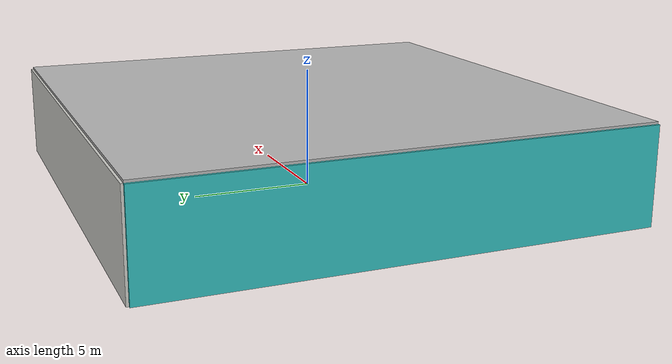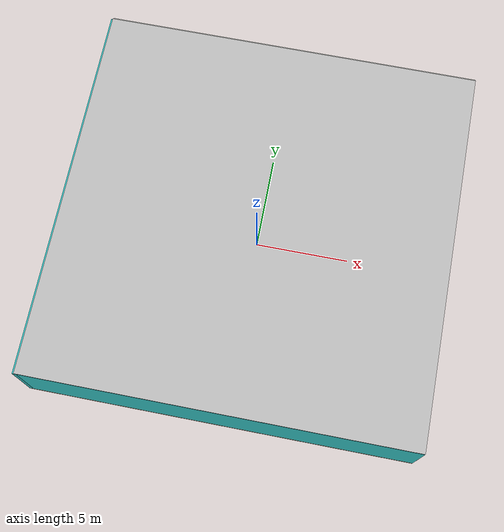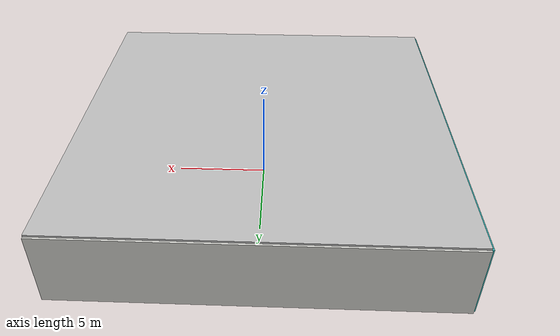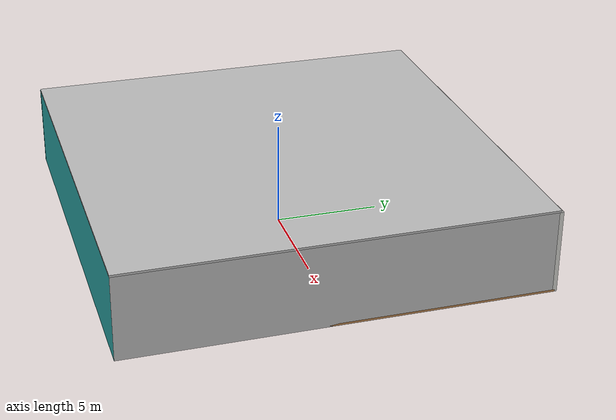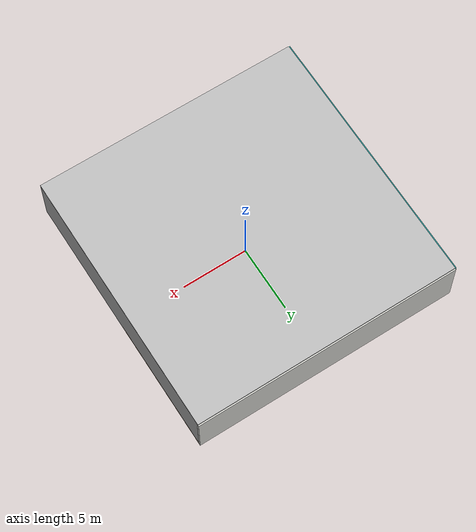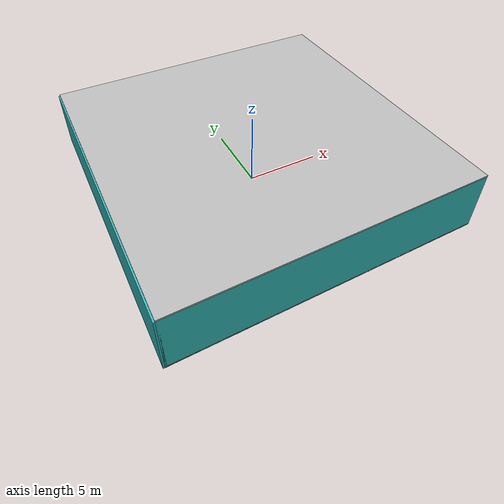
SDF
<sdf version="1.4">
 <world name="default">
  <physics type="ode">
   <max_step_size>0.001</max_step_size>
   <real_time_factor>1</real_time_factor>
   <real_time_update_rate>1000</real_time_update_rate>
   <gravity>0 0 -9.8</gravity>
  </physics>
  <scene><ambient>0.4 0.4 0.4 1</ambient><background>0.7 0.7 0.7 1</background><shadows>1</shadows></scene>
  <model name="Surrounding">
   <static>1</static>
   <link name="Ceiling">
    <collision name="Ceiling_Collision"><geometry><box><size>20 20 0.1</size></box></geometry></collision>
    <visual name="Ceiling_Visual">
     <geometry><box><size>20 20 0.1</size></box></geometry>
     <material>
      <script><uri>file://media/materials/scripts/gazebo.material</uri><name>Gazebo/CloudySky</name></script>
     </material>
    </visual>
    <pose>0 0 4.05 0 0 0</pose>
   </link>
   <link name="Wall_South">
    <collision name="Wall_South_Collision">
     <geometry><box><size>20 0 4</size></box></geometry>
     <pose>0 0 2 0 -0 0</pose>
    </collision>
    <visual name="Wall_South_Visual">
     <pose>0 0 2 0 -0 0</pose>
     <geometry><box><size>20 0 4</size></box></geometry>
     <material>
      <script><uri>file://media/materials/scripts/gazebo.material</uri><name>Gazebo/TurquoiseGlow</name></script>
     </material>
    </visual>
    <velocity_decay><linear>0</linear><angular>0</angular></velocity_decay>
    <pose>0 -10 0 0 -0 0</pose>
   </link>
   <link name="Wall_East">
    <collision name="Wall_21_Collision">
     <geometry><box><size>20 0 4</size></box></geometry>
     <pose>0 0 2 0 -0 0</pose>
    </collision>
    <visual name="Wall_21_Visual">
     <pose>0 0 2 0 -0 0</pose>
     <geometry><box><size>20 0 4</size></box></geometry>
     <material>
      <script><uri>file://media/materials/scripts/gazebo.material</uri><name>Gazebo/Pioneer2Body</name></script>
     </material>
    </visual>
    <velocity_decay><linear>0</linear><angular>0</angular></velocity_decay>
    <pose>10 0 0 0 -0 1.5708</pose>
   </link>
   <link name="Wall_North">
    <collision name="Wall_22_Collision">
     <geometry><box><size>20 0.2 4</size></box></geometry>
     <pose>0 0 2 0 -0 0</pose>
    </collision>
    <visual name="Wall_22_Visual">
     <pose>0 0 2 0 -0 0</pose>
     <geometry><box><size>20 0.2 4</size></box></geometry>
     <material>
      <script><uri>file://media/materials/scripts/gazebo.material</uri><name>Gazebo/CeilingTiled</name></script>
     </material>
    </visual>
    <velocity_decay><linear>0</linear><angular>0</angular></velocity_decay>
    <pose>0 10 0 0 -0 0</pose>
   </link>
   <link name="Wall_West">
    <collision name="Wall_23_Collision">
     <geometry><box><size>20 0.2 4</size></box></geometry>
     <pose>0 0 2 0 -0 0</pose>
    </collision>
    <visual name="Wall_23_Visual">
     <pose>0 0 2 0 -0 0</pose>
     <geometry><box><size>20 0.2 4</size></box></geometry>
     <material>
      <script><uri>file://media/materials/scripts/gazebo.material</uri><name>Gazebo/Turquoise</name></script>
     </material>
    </visual>
    <velocity_decay><linear>0</linear><angular>0</angular></velocity_decay>
    <pose>-10 0 0 0 0 -1.5708</pose>
   </link>
   <link name="Ground_link">
    <collision name="collision">
     <pose>0 0 .05 0 -0 0</pose>
     <geometry><box><size>20 20 0.1</size></box></geometry>
    </collision>
    <visual name="visual">
     <pose>0 0 .05 0 -0 0</pose>
     <geometry><box><size>20 20 0.1</size></box></geometry>
     <material>
      <script><uri>file://media/materials/scripts/gazebo.material</uri><name>Gazebo/WoodFloor</name></script>
     </material>
    </visual>
   </link>
   <static>1</static>
  </model>
  <spherical_coordinates>
   <surface_model>EARTH_WGS84</surface_model>
   <latitude_deg>0</latitude_deg>
   <longitude_deg>0</longitude_deg>
   <elevation>0</elevation>
   <heading_deg>0</heading_deg>
  </spherical_coordinates>
  <light name="lightball_0" type="diffuse">
   <diffuse>0.8 0.8 0.8 1</diffuse>
   <specular>0.2 0.2 0.2 1</specular>
   <attenuation>
    <range>100</range>
    <constant>0.7</constant>
    <linear>0.01</linear>
    <quadratic>0.001</quadratic>
   </attenuation>
   <direction>-0.5 0.1 -0.9</direction>
   <pose>9.29035079524 4.75761894782 2.35818546623 0 0 0</pose>
  </light>
  <light name="lightball_1" type="diffuse">
   <diffuse>0.8 0.8 0.8 1</diffuse>
   <specular>0.2 0.2 0.2 1</specular>
   <attenuation>
    <range>100</range>
    <constant>0.7</constant>
    <linear>0.01</linear>
    <quadratic>0.001</quadratic>
   </attenuation>
   <direction>-0.5 0.1 -0.9</direction>
   <pose>1.71779865751 -9.33204719317 1.56249241037 0 0 0</pose>
  </light>
  <light name="lightball_2" type="diffuse">
   <diffuse>0.8 0.8 0.8 1</diffuse>
   <specular>0.2 0.2 0.2 1</specular>
   <attenuation>
    <range>100</range>
    <constant>0.7</constant>
    <linear>0.01</linear>
    <quadratic>0.001</quadratic>
   </attenuation>
   <direction>-0.5 0.1 -0.9</direction>
   <pose>1.23417059934 -5.71091563426 0.611015746646 0 0 0</pose>
  </light>
  <light name="lightball_3" type="diffuse">
   <diffuse>0.8 0.8 0.8 1</diffuse>
   <specular>0.2 0.2 0.2 1</specular>
   <attenuation>
    <range>100</range>
    <constant>0.7</constant>
    <linear>0.01</linear>
    <quadratic>0.001</quadratic>
   </attenuation>
   <direction>-0.5 0.1 -0.9</direction>
   <pose>-2.92446435527 2.34162180213 1.71668272055 0 0 0</pose>
  </light>
  <light name="lightball_4" type="diffuse">
   <diffuse>0.8 0.8 0.8 1</diffuse>
   <specular>0.2 0.2 0.2 1</specular>
   <attenuation>
    <range>100</range>
    <constant>0.7</constant>
    <linear>0.01</linear>
    <quadratic>0.001</quadratic>
   </attenuation>
   <direction>-0.5 0.1 -0.9</direction>
   <pose>-0.129717492725 1.59234899475 1.49350980543 0 0 0</pose>
  </light>
  <light name="lightball_5" type="diffuse">
   <diffuse>0.8 0.8 0.8 1</diffuse>
   <specular>0.2 0.2 0.2 1</specular>
   <attenuation>
    <range>100</range>
    <constant>0.7</constant>
    <linear>0.01</linear>
    <quadratic>0.001</quadratic>
   </attenuation>
   <direction>-0.5 0.1 -0.9</direction>
   <pose>5.2890224895 9.20680108844 1.66689829848 0 0 0</pose>
  </light>
  <light name="lightball_6" type="diffuse">
   <diffuse>0.8 0.8 0.8 1</diffuse>
   <specular>0.2 0.2 0.2 1</specular>
   <attenuation>
    <range>100</range>
    <constant>0.7</constant>
    <linear>0.01</linear>
    <quadratic>0.001</quadratic>
   </attenuation>
   <direction>-0.5 0.1 -0.9</direction>
   <pose>-1.03070616453 -0.513195319296 1.2152717148 0 0 0</pose>
  </light>
  <light name="lightball_7" type="diffuse">
   <diffuse>0.8 0.8 0.8 1</diffuse>
   <specular>0.2 0.2 0.2 1</specular>
   <attenuation>
    <range>100</range>
    <constant>0.7</constant>
    <linear>0.01</linear>
    <quadratic>0.001</quadratic>
   </attenuation>
   <direction>-0.5 0.1 -0.9</direction>
   <pose>2.62097448064 -0.890594261193 1.47183161809 0 0 0</pose>
  </light>
  <light name="lightball_8" type="diffuse">
   <diffuse>0.8 0.8 0.8 1</diffuse>
   <specular>0.2 0.2 0.2 1</specular>
   <attenuation>
    <range>100</range>
    <constant>0.7</constant>
    <linear>0.01</linear>
    <quadratic>0.001</quadratic>
   </attenuation>
   <direction>-0.5 0.1 -0.9</direction>
   <pose>2.40993757938 -8.93809850283 1.76126609218 0 0 0</pose>
  </light>
  <light name="lightball_9" type="diffuse">
   <diffuse>0.8 0.8 0.8 1</diffuse>
   <specular>0.2 0.2 0.2 1</specular>
   <attenuation>
    <range>100</range>
    <constant>0.7</constant>
    <linear>0.01</linear>
    <quadratic>0.001</quadratic>
   </attenuation>
   <direction>-0.5 0.1 -0.9</direction>
   <pose>5.14288679736 -7.19102738255 1.16689244999 0 0 0</pose>
  </light>
  <light name="lightball_10" type="diffuse">
   <diffuse>0.8 0.8 0.8 1</diffuse>
   <specular>0.2 0.2 0.2 1</specular>
   <attenuation>
    <range>100</range>
    <constant>0.7</constant>
    <linear>0.01</linear>
    <quadratic>0.001</quadratic>
   </attenuation>
   <direction>-0.5 0.1 -0.9</direction>
   <pose>-3.15529912593 9.81952829901 1.2390053673 0 0 0</pose>
  </light>
  <light name="lightball_11" type="diffuse">
   <diffuse>0.8 0.8 0.8 1</diffuse>
   <specular>0.2 0.2 0.2 1</specular>
   <attenuation>
    <range>100</range>
    <constant>0.7</constant>
    <linear>0.01</linear>
    <quadratic>0.001</quadratic>
   </attenuation>
   <direction>-0.5 0.1 -0.9</direction>
   <pose>-8.68305770299 -1.02263121799 0.564917663853 0 0 0</pose>
  </light>
  <light name="lightball_12" type="diffuse">
   <diffuse>0.8 0.8 0.8 1</diffuse>
   <specular>0.2 0.2 0.2 1</specular>
   <attenuation>
    <range>100</range>
    <constant>0.7</constant>
    <linear>0.01</linear>
    <quadratic>0.001</quadratic>
   </attenuation>
   <direction>-0.5 0.1 -0.9</direction>
   <pose>-2.31821401186 9.49463031717 2.55458450391 0 0 0</pose>
  </light>
  <include><uri>model://table</uri><pose>-7.69199624593 4.43343712111 0 0 0 2.49700390927</pose></include>
  <include>
   <uri>model://construction_cone</uri>
   <pose>-4.51771871817 -4.85710916964 0 0 0 1.22449780586</pose>
  </include>
  <include><uri>model://cabinet</uri><pose>-4.00556734686 -2.10810117402 0 0 0 0.239542033343</pose></include>
  <include>
   <uri>model://textured_shapes</uri>
   <pose>2.03090160595 4.39426080363 0 0 0 1.05009643905</pose>
  </include>
  <include><uri>model://cabinet</uri><pose>8.22581417581 4.28830956933 0 0 0 0.0379731721609</pose></include>
 </world>
</sdf>

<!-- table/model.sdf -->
<sdf version="1.5">
  <model name="table">
    <static>true</static>
    <link name="link">
      <collision name="surface">
        <pose>0 0 1.0 0 0 0</pose>
        <geometry>
          <box>
            <size>1.5 0.8 0.03</size>
          </box>
        </geometry>
        <surface>
          <friction>
            <ode>
              <mu>0.6</mu>
              <mu2>0.6</mu2>
            </ode>
          </friction>
        </surface>
      </collision>
      <visual name="visual1">
        <pose>0 0 1.0 0 0 0</pose>
        <geometry>
          <box>
            <size>1.5 0.8 0.03</size>
          </box>
        </geometry>
        <material>
          <script>
            <uri>model://media/materials/scripts/gazebo.material</uri>
            <name>Gazebo/Wood</name>
          </script>
        </material>
      </visual>
      <collision name="front_left_leg">
        <pose>0.68 0.38 0.5 0 0 0</pose>
        <geometry>
          <cylinder>
            <radius>0.02</radius>
            <length>1.0</length>
          </cylinder>
        </geometry>
      </collision>
      <visual name="front_left_leg">
        <pose>0.68 0.38 0.5 0 0 0</pose>
        <geometry>
          <cylinder>
            <radius>0.02</radius>
            <length>1.0</length>
          </cylinder>
        </geometry>
        <material>
          <script>
            <uri>model://media/materials/scripts/gazebo.material</uri>
            <name>Gazebo/Grey</name>
          </script>
        </material>
      </visual>
      <collision name="front_right_leg">
        <pose>0.68 -0.38 0.5 0 0 0</pose>
        <geometry>
          <cylinder>
            <radius>0.02</radius>
            <length>1.0</length>
          </cylinder>
        </geometry>
      </collision>
      <visual name="front_right_leg">
        <pose>0.68 -0.38 0.5 0 0 0</pose>
        <geometry>
          <cylinder>
            <radius>0.02</radius>
            <length>1.0</length>
          </cylinder>
        </geometry>
        <material>
          <script>
            <uri>model://media/materials/scripts/gazebo.material</uri>
            <name>Gazebo/Grey</name>
          </script>
        </material>
      </visual>
      <collision name="back_right_leg">
        <pose>-0.68 -0.38 0.5 0 0 0</pose>
        <geometry>
          <cylinder>
            <radius>0.02</radius>
            <length>1.0</length>
          </cylinder>
        </geometry>
      </collision>
      <visual name="back_right_leg">
        <pose>-0.68 -0.38 0.5 0 0 0</pose>
        <geometry>
          <cylinder>
            <radius>0.02</radius>
            <length>1.0</length>
          </cylinder>
        </geometry>
        <material>
          <script>
            <uri>model://media/materials/scripts/gazebo.material</uri>
            <name>Gazebo/Grey</name>
          </script>
        </material>
      </visual>
      <collision name="back_left_leg">
        <pose>-0.68 0.38 0.5 0 0 0</pose>
        <geometry>
          <cylinder>
            <radius>0.02</radius>
            <length>1.0</length>
          </cylinder>
        </geometry>
      </collision>
      <visual name="back_left_leg">
        <pose>-0.68 0.38 0.5 0 0 0</pose>
        <geometry>
          <cylinder>
            <radius>0.02</radius>
            <length>1.0</length>
          </cylinder>
        </geometry>
        <material>
          <script>
            <uri>model://media/materials/scripts/gazebo.material</uri>
            <name>Gazebo/Grey</name>
          </script>
        </material>
      </visual>
    </link>
  </model>
</sdf>

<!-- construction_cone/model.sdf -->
<sdf version="1.5">
  <model name="Construction Cone">
    <link name="link">
      <collision name="collision">
        <geometry>
          <mesh>
            <scale>10 10 10</scale>
            <uri>file://isr-testbed/construction_cone/meshes/construction_cone.dae</uri>
          </mesh>
        </geometry>
      </collision>
      <visual name="visual">
        <geometry>
          <mesh>
            <scale>10 10 10</scale>
            <uri>file://isr-testbed/construction_cone/meshes/construction_cone.dae</uri>
          </mesh>
        </geometry>
      </visual>
    </link>
  </model>
</sdf>

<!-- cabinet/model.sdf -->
<sdf version="1.5">
  <model name="cabinet">
    <static>true</static>
    <link name="cabinet_bottom_plate">
      <inertial>
        <pose>0 0 -1 0 0 0</pose>
        <inertia>
          <ixx>2.050000</ixx>
          <ixy>0</ixy>
          <ixz>0</ixz>
          <iyy>2.050000</iyy>
          <iyz>0</iyz>
          <izz>2.050000</izz>
        </inertia>
        <mass>25.000000</mass>
      </inertial>
      <collision name="cabinet_bottom_plate_geom">
        <pose>0 0 0.010000 0 0 0</pose>
        <geometry>
          <box>
            <size>0.450000 0.450000 0.020000</size>
          </box>
        </geometry>
      </collision>
      <visual name="cabinet_bottom_plate_geom_visual">
        <pose>0 0 0.010000 0 0 0</pose>
        <geometry>
          <box>
            <size>0.450000 0.450000 0.020000</size>
          </box>
        </geometry>
        <material>
          <script>
            <uri>model://media/materials/scripts/gazebo.material</uri>
            <name>Gazebo/Wood</name>
          </script>
        </material>
      </visual>
      <collision name="cabinet_bottom_plate_geom_cabinet_back_plate">
        <pose>0.235000 0 0.510000 0 0 0</pose>
        <geometry>
          <box>
            <size>0.020000 0.450000 1.020000</size>
          </box>
        </geometry>
      </collision>
      <visual name="cabinet_bottom_plate_geom_cabinet_back_plate_visual">
        <pose>0.235000 0 0.510000 0 0 0</pose>
        <geometry>
          <box>
            <size>0.020000 0.450000 1.020000</size>
          </box>
        </geometry>
        <material>
          <script>
            <uri>model://media/materials/scripts/gazebo.material</uri>
            <name>Gazebo/Wood</name>
          </script>
        </material>
      </visual>
      <collision name="cabinet_bottom_plate_geom_cabinet_left_plate">
        <pose>0 0.235000 0.510000 0 0 0</pose>
        <geometry>
          <box>
            <size>0.450000 0.020000 1.020000</size>
          </box>
        </geometry>
      </collision>
      <visual name="cabinet_bottom_plate_geom_cabinet_left_plate_visual">
        <pose>0 0.235000 0.510000 0 0 0</pose>
        <geometry>
          <box>
            <size>0.450000 0.020000 1.020000</size>
          </box>
        </geometry>
        <material>
          <script>
            <uri>model://media/materials/scripts/gazebo.material</uri>
            <name>Gazebo/Wood</name>
          </script>
        </material>
      </visual>
      <collision name="cabinet_bottom_plate_geom_cabinet_middle_plate">
        <pose>0 0 0.510000 0 0 0</pose>
        <geometry>
          <box>
            <size>0.450000 0.450000 0.020000</size>
          </box>
        </geometry>
      </collision>
      <visual name="cabinet_bottom_plate_geom_cabinet_middle_plate_visual">
        <pose>0 0 0.510000 0 0 0</pose>
        <geometry>
          <box>
            <size>0.450000 0.450000 0.020000</size>
          </box>
        </geometry>
        <material>
          <script>
            <uri>model://media/materials/scripts/gazebo.material</uri>
            <name>Gazebo/Wood</name>
          </script>
        </material>
      </visual>
      <collision name="cabinet_bottom_plate_geom_cabinet_right_plate">
        <pose>0 -0.235000 0.510000 0 0 0</pose>
        <geometry>
          <box>
            <size>0.450000 0.020000 1.020000</size>
          </box>
        </geometry>
      </collision>
      <visual name="cabinet_bottom_plate_geom_cabinet_right_plate_visual">
        <pose>0 -0.235000 0.510000 0 0 0</pose>
        <geometry>
          <box>
            <size>0.450000 0.020000 1.020000</size>
          </box>
        </geometry>
        <material>
          <script>
            <uri>model://media/materials/scripts/gazebo.material</uri>
            <name>Gazebo/Wood</name>
          </script>
        </material>
      </visual>
      <collision name="cabinet_bottom_plate_geom_cabinet_top_plate">
        <pose>0 0 1.010000 0 0 0</pose>
        <geometry>
          <box>
            <size>0.450000 0.450000 0.020000</size>
          </box>
        </geometry>
      </collision>
      <visual name="cabinet_bottom_plate_geom_cabinet_top_plate_visual">
        <pose>0 0 1.010000 0 0 0</pose>
        <geometry>
          <box>
            <size>0.450000 0.450000 0.020000</size>
          </box>
        </geometry>
        <material>
          <script>
            <uri>model://media/materials/scripts/gazebo.material</uri>
            <name>Gazebo/Wood</name>
          </script>
        </material>
      </visual>
    </link>
  </model>
</sdf>

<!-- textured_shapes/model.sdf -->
<sdf version="1.6">
  <model name="textured_shapes">
    <pose>0 0 0.5 0 0 0</pose>
    <link name="box">
      <pose>0 -1.5 0 0 0 0</pose>
      <collision name="collision">
        <geometry>
          <box>
            <size>1 1 1</size>
          </box>
        </geometry>
      </collision>
      <visual name="visual">
        <geometry>
          <box>
            <size>1 1 1</size>
          </box>
        </geometry>
        <material>
          <script>
            <uri>model://../model_source/models/textured_shapes/materials/scripts</uri>
            <uri>model://../model_source/models/textured_shapes/materials/textures</uri>
            <name>TexturedShape/Squares</name>
          </script>
        </material>
      </visual>
    </link>
    <link name="sphere">
      <collision name="collision">
        <geometry>
          <sphere>
            <radius>0.5</radius>
          </sphere>
        </geometry>
      </collision>
      <visual name="visual">
        <geometry>
          <sphere>
            <radius>0.5</radius>
          </sphere>
        </geometry>
        <material>
          <script>
            <uri>model://../model_source/models/textured_shapes/materials/scripts</uri>
            <uri>model://../model_source/models/textured_shapes/materials/textures</uri>
            <name>TexturedShape/Squares</name>
          </script>
        </material>
      </visual>
    </link>
    <link name="cylinder">
      <pose>0 1.5 0 0 0 0</pose>
      <collision name="collision">
        <geometry>
          <cylinder>
            <radius>0.5</radius>
            <length>1</length>
          </cylinder>
        </geometry>
      </collision>
      <visual name="visual">
        <geometry>
          <cylinder>
            <radius>0.5</radius>
            <length>1</length>
          </cylinder>
        </geometry>
        <material>
          <script>
            <uri>model://../model_source/models/textured_shapes/materials/scripts</uri>
            <uri>model://../model_source/models/textured_shapes/materials/textures</uri>
            <name>TexturedShape/Squares</name>
          </script>
        </material>
      </visual>
    </link>
  </model>
</sdf>
